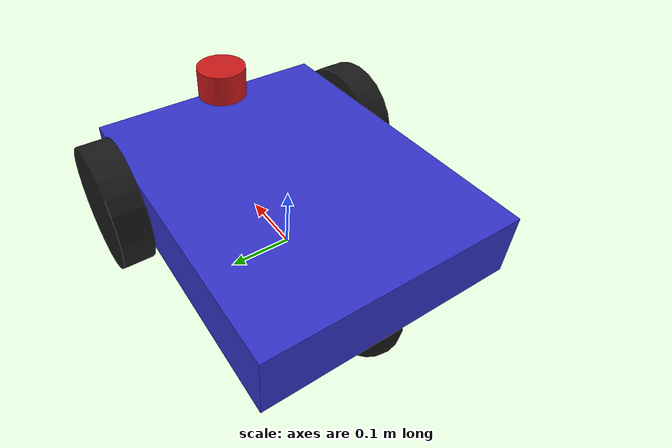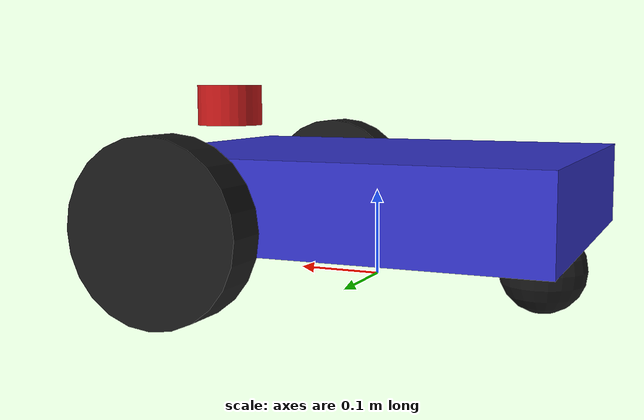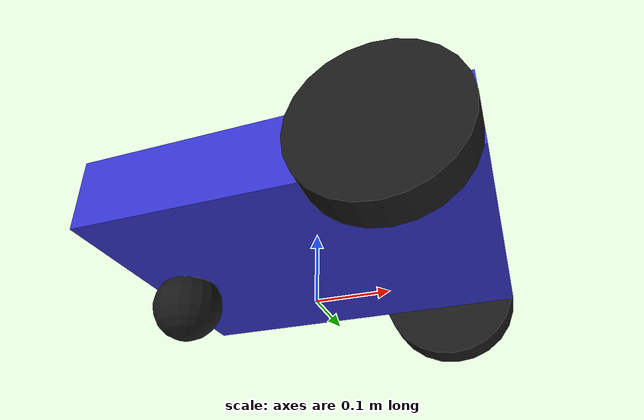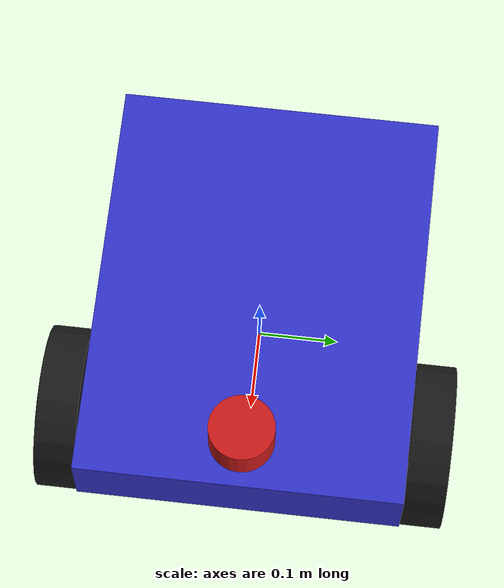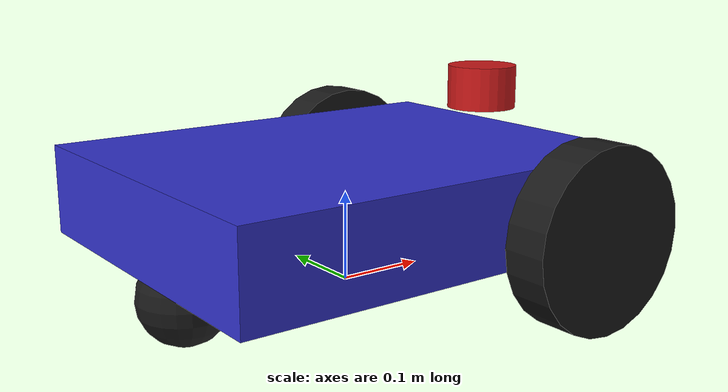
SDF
<?xml version="1.0" ?>
<sdf version="1.8">
  <model name="diff_drive_robot">
    <pose>0 0 0.1 0 0 0</pose>

    <link name="base_link">
      <inertial>
        <pose>0 0 -0.05 0 0 0</pose>
        <mass>5.0</mass>
        <inertia>
          <ixx>0.0708</ixx>
          <iyy>0.1083</iyy>
          <izz>0.1708</izz>
        </inertia>
      </inertial>
      <collision name="collision">
        <geometry><box><size>0.5 0.4 0.1</size></box></geometry>
        <surface>
          <friction>
            <ode><mu>0.1</mu><mu2>0.1</mu2></ode>
          </friction>
        </surface>
      </collision>
      <visual name="visual">
        <geometry><box><size>0.5 0.4 0.1</size></box></geometry>
        <material><ambient>0.2 0.2 0.8 1</ambient><diffuse>0.2 0.2 0.8 1</diffuse></material>
      </visual>
    </link>

    <link name="left_wheel">
      <pose>0.15 0.225 -0.025 -1.5707 0 0</pose>
      <inertial>
        <mass>0.5</mass>
        <inertia><ixx>0.00135</ixx><iyy>0.00135</iyy><izz>0.0025</izz></inertia>
      </inertial>
      <collision name="collision">
        <geometry><cylinder><radius>0.1</radius><length>0.05</length></cylinder></geometry>
        <surface>
          <friction>
            <ode><mu>0.8</mu><mu2>0.8</mu2></ode>
          </friction>
        </surface>
      </collision>
      <visual name="visual">
        <geometry><cylinder><radius>0.1</radius><length>0.05</length></cylinder></geometry>
        <material><ambient>0.1 0.1 0.1 1</ambient><diffuse>0.1 0.1 0.1 1</diffuse></material>
      </visual>
    </link>

    <link name="right_wheel">
      <pose>0.15 -0.225 -0.025 -1.5707 0 0</pose>
      <inertial>
        <mass>0.5</mass>
        <inertia><ixx>0.00135</ixx><iyy>0.00135</iyy><izz>0.0025</izz></inertia>
      </inertial>
      <collision name="collision">
        <geometry><cylinder><radius>0.1</radius><length>0.05</length></cylinder></geometry>
        <surface>
          <friction>
            <ode><mu>0.8</mu><mu2>0.8</mu2></ode>
          </friction>
        </surface>
      </collision>
      <visual name="visual">
        <geometry><cylinder><radius>0.1</radius><length>0.05</length></cylinder></geometry>
        <material><ambient>0.1 0.1 0.1 1</ambient><diffuse>0.1 0.1 0.1 1</diffuse></material>
      </visual>
    </link>

    <link name="caster">
      <pose>-0.2 0 -0.08 0 0 0</pose>
      <inertial>
        <mass>0.2</mass>
        <inertia><ixx>0.0002</ixx><iyy>0.0002</iyy><izz>0.0002</izz></inertia>
      </inertial>
      <collision name="collision">
        <geometry><sphere><radius>0.05</radius></sphere></geometry>
        <surface>
          <friction>
            <ode><mu>0.0</mu><mu2>0.0</mu2></ode>
          </friction>
        </surface>
      </collision>
      <visual name="visual">
        <geometry><sphere><radius>0.05</radius></sphere></geometry>
        <material><ambient>0.1 0.1 0.1 1</ambient><diffuse>0.1 0.1 0.1 1</diffuse></material>
      </visual>
    </link>

    <link name="lidar_link">
      <pose>0.2 0 0.1 0 0 0</pose>
      <inertial>
        <mass>0.1</mass>
        <inertia><ixx>0.001</ixx><iyy>0.001</iyy><izz>0.001</izz></inertia>
      </inertial>
      <visual name="visual">
        <geometry><cylinder><radius>0.04</radius><length>0.05</length></cylinder></geometry>
        <material><ambient>0.8 0.1 0.1 1</ambient><diffuse>0.8 0.1 0.1 1</diffuse></material>
      </visual>
      <sensor name="gpu_lidar" type="gpu_lidar">
        <always_on>1</always_on>
        <visualize>true</visualize> <update_rate>10</update_rate>
        <lidar>
          <scan>
            <horizontal>
              <samples>640</samples><resolution>1</resolution><min_angle>-3.14159</min_angle><max_angle>3.14159</max_angle>
            </horizontal>
          </scan>
          <range><min>0.15</min><max>12.0</max></range>
        </lidar>
      </sensor>
    </link>

    <joint name="left_wheel_joint" type="revolute">
      <parent>base_link</parent>
      <child>left_wheel</child>
      <axis>
        <xyz>0 0 1</xyz>
        <limit>
          <lower>-1.79769e+308</lower>
          <upper>1.79769e+308</upper>
        </limit>
      </axis>
    </joint>

    <joint name="right_wheel_joint" type="revolute">
      <parent>base_link</parent>
      <child>right_wheel</child>
      <axis>
        <xyz>0 0 1</xyz>
        <limit>
          <lower>-1.79769e+308</lower>
          <upper>1.79769e+308</upper>
        </limit>
      </axis>
    </joint>

    <joint name="caster_joint" type="ball">
      <parent>base_link</parent>
      <child>caster</child>
    </joint>

    <joint name="lidar_joint" type="fixed">
      <parent>base_link</parent>
      <child>lidar_link</child>
    </joint>

    <plugin filename="gz-sim-diff-drive-system" name="gz::sim::systems::DiffDrive">
        <left_joint>left_wheel_joint</left_joint>
        <right_joint>right_wheel_joint</right_joint>
        <wheel_separation>0.45</wheel_separation>
        <wheel_radius>0.1</wheel_radius>
    </plugin>

    <plugin filename="gz-sim-pose-publisher-system" name="gz::sim::systems::PosePublisher">
        <publish_link_pose>true</publish_link_pose>
        <use_pose_vector_msg>true</use_pose_vector_msg>
        <publish_nested_model_pose>true</publish_nested_model_pose>
    </plugin>
  </model>
</sdf>
